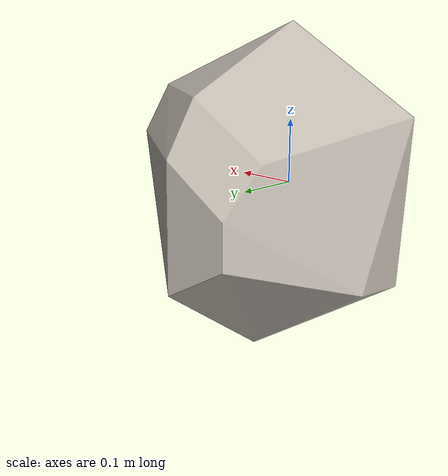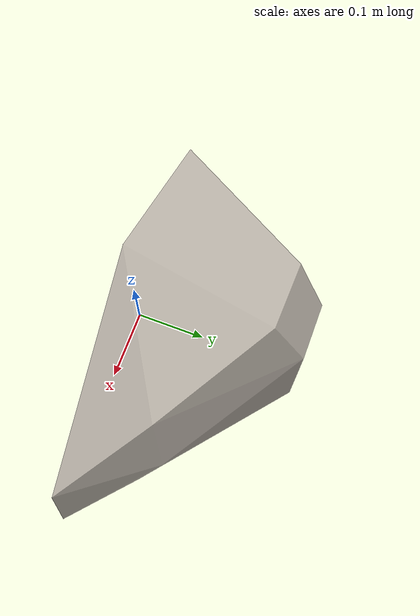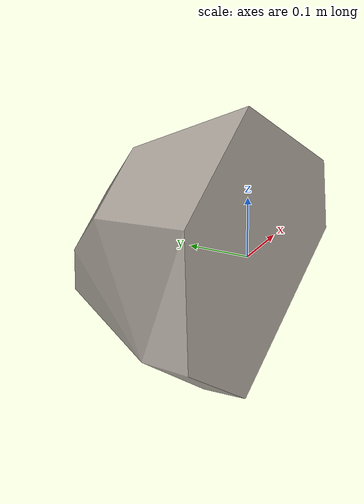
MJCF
<mujoco model="rock_A">
  <default>
    <default class="visual">
      <geom group="2" type="mesh" contype="0" conaffinity="0" />
    </default>
    <default class="collision">
      <geom group="3" type="mesh" />
    </default>
  </default>
  <asset>
    <texture type="2d" name="rock_A_spacebits_texture" file="spacebits_texture.png" />
    <material name="rock_A_spacebits_texture" texture="rock_A_spacebits_texture" specular="0.5" shininess="0.15999998099999999" />
    <mesh file="rock_A.obj" name="rock_A_rock_A" />
  </asset>
  <worldbody>
    <body name="rock_A">
      <geom material="rock_A_spacebits_texture" mesh="rock_A_rock_A" class="visual" />
      <geom mesh="rock_A_rock_A" class="collision" />
    </body>
  </worldbody>
</mujoco>
